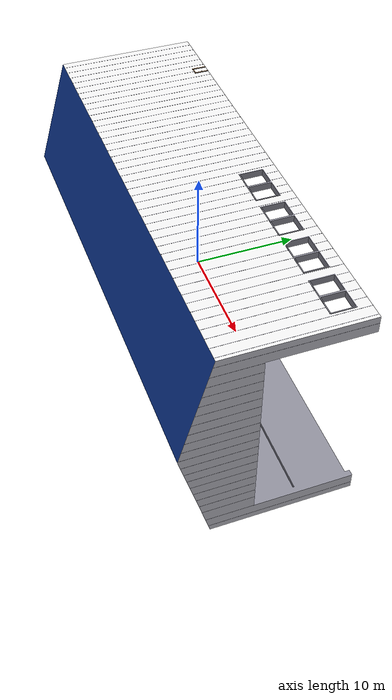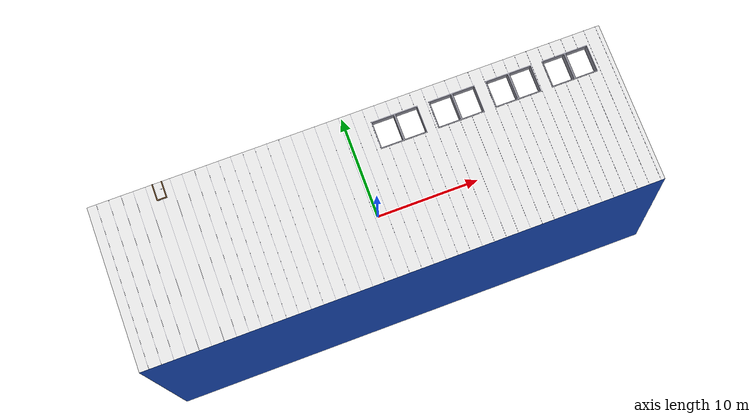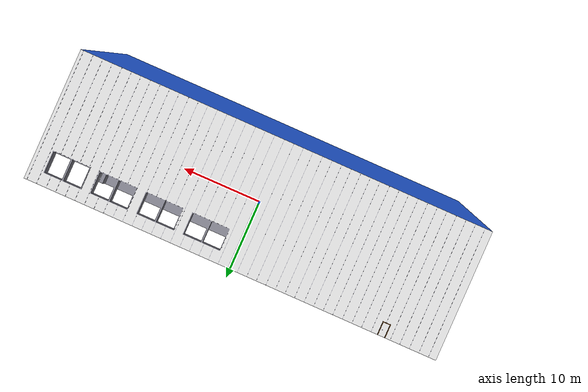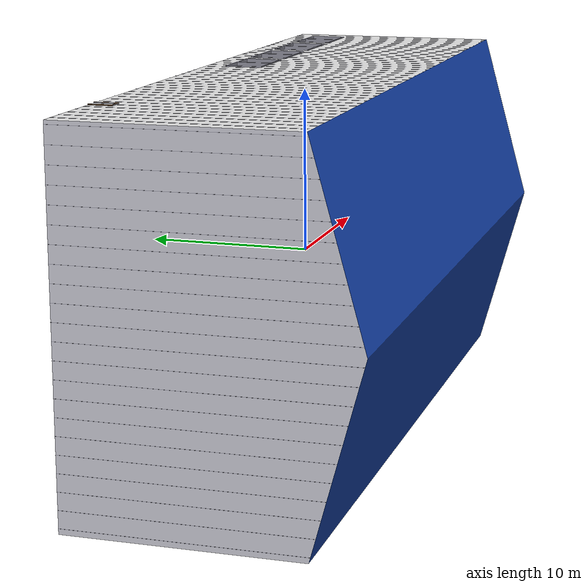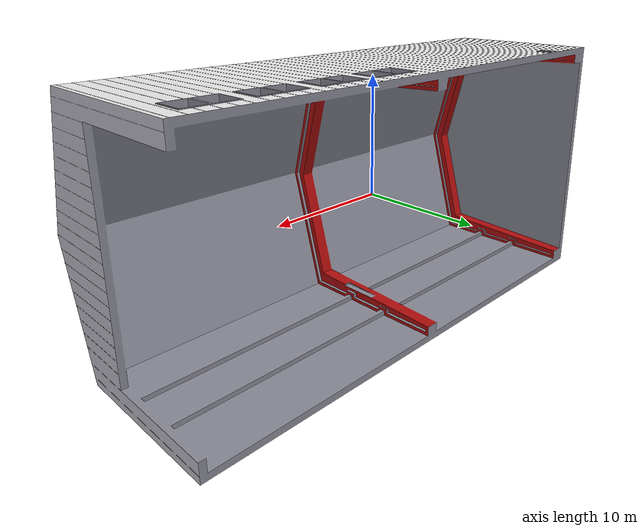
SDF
<?xml version="1.0" ?>
<sdf version="1.9">
  <model name="hangar">
    <static>true</static>
    <link name="link">

      <!-- Colisão baseada no arquivo STL -->
      <collision name="collision">
        <geometry>
          <mesh>
            <uri>model://hangar/meshes/HANGAR.stl</uri>
            <scale>0.55 0.55 0.55</scale>
          </mesh>
        </geometry>
      </collision>

      <!-- Visual baseado no arquivo DAE (Collada) -->
      <visual name="visual">
        <geometry>
          <mesh>
            <uri>model://hangar/meshes/hangar.dae</uri>
            <scale>0.55 0.55 0.55</scale>
          </mesh>
        </geometry>
      </visual>

    </link>
  </model>
</sdf>
